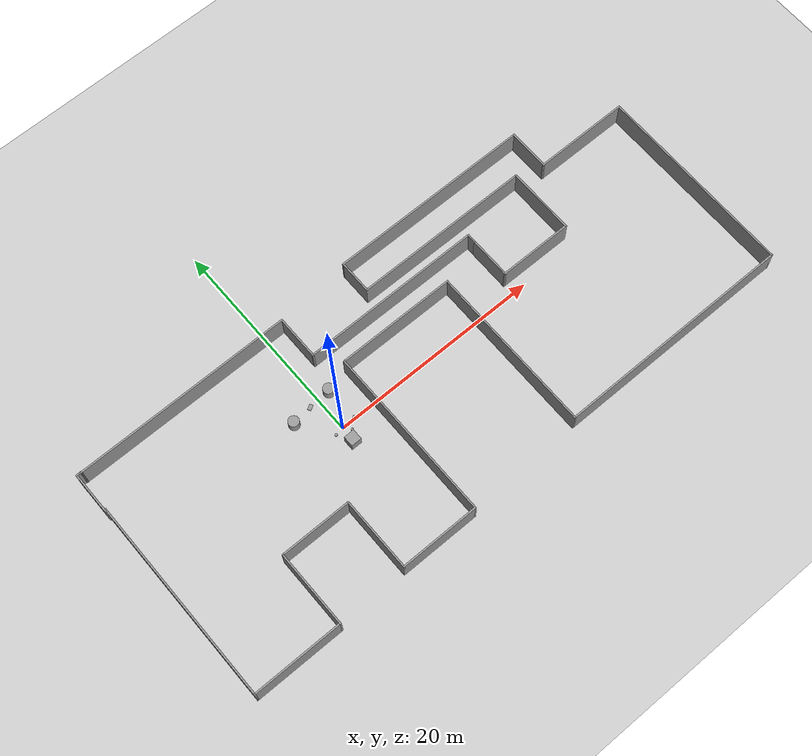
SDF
<sdf version="1.7">
 <world name="default">
  <light name="sun" type="directional">
   <pose>0 0 10 0 -0 0</pose>
   <diffuse>0.8 0.8 0.8 1</diffuse>
   <specular>0.2 0.2 0.2 1</specular>
   <attenuation>
    <range>1000</range>
    <constant>0.9</constant>
    <linear>0.01</linear>
    <quadratic>0.001</quadratic>
   </attenuation>
   <direction>-0.5 0.1 -0.9</direction>
   <spot><inner_angle>0</inner_angle><outer_angle>0</outer_angle><falloff>0</falloff></spot>
  </light>
  <model name="ground_plane">
   <static>1</static>
   <link name="link">
    <collision name="collision">
     <geometry><plane><normal>0 0 1</normal><size>100 100</size></plane></geometry>
     <surface>
      <contact><collide_bitmask>65535</collide_bitmask></contact>
      <friction><ode><mu>100</mu><mu2>50</mu2></ode></friction>
     </surface>
    </collision>
    <visual name="visual">
     <cast_shadows>0</cast_shadows>
     <geometry><plane><normal>0 0 1</normal><size>100 100</size></plane></geometry>
     <material>
      <script><uri>file://media/materials/scripts/gazebo.material</uri><name>Gazebo/Grey</name></script>
     </material>
    </visual>
   </link>
  </model>
  <gravity>0 0 -9.8</gravity>
  <magnetic_field>6e-06 2.3e-05 -4.2e-05</magnetic_field>
  <atmosphere type="adiabatic"/>
  <physics type="ode">
   <max_step_size>0.001</max_step_size>
   <real_time_factor>1</real_time_factor>
   <real_time_update_rate>1000</real_time_update_rate>
  </physics>
  <scene><ambient>0.4 0.4 0.4 1</ambient><background>0.7 0.7 0.7 1</background><shadows>1</shadows></scene>
  <spherical_coordinates>
   <surface_model>EARTH_WGS84</surface_model>
   <latitude_deg>0</latitude_deg>
   <longitude_deg>0</longitude_deg>
   <elevation>0</elevation>
   <heading_deg>0</heading_deg>
  </spherical_coordinates>
  <model name="world1">
   <pose>8.8688 -1.19416 0 0 -0 0</pose>
   <link name="Wall_0">
    <collision name="Wall_0_Collision">
     <geometry><box><size>19.25 0.15 2.5</size></box></geometry>
     <pose>0 0 1.25 0 -0 0</pose>
    </collision>
    <visual name="Wall_0_Visual">
     <pose>0 0 1.25 0 -0 0</pose>
     <geometry><box><size>19.25 0.15 2.5</size></box></geometry>
     <material>
      <script><uri>file://media/materials/scripts/gazebo.material</uri><name>Gazebo/Grey</name></script>
      <ambient>1 1 1 1</ambient>
     </material>
     <meta><layer>0</layer></meta>
    </visual>
    <pose>-27.8267 -2.175 0 0 -0 -1.5708</pose>
   </link>
   <link name="Wall_1">
    <collision name="Wall_1_Collision">
     <geometry><box><size>8.5 0.15 2.5</size></box></geometry>
     <pose>0 0 1.25 0 -0 0</pose>
    </collision>
    <visual name="Wall_1_Visual">
     <pose>0 0 1.25 0 -0 0</pose>
     <geometry><box><size>8.5 0.15 2.5</size></box></geometry>
     <material>
      <script><uri>file://media/materials/scripts/gazebo.material</uri><name>Gazebo/Grey</name></script>
      <ambient>1 1 1 1</ambient>
     </material>
     <meta><layer>0</layer></meta>
    </visual>
    <pose>-23.6517 -11.725 0 0 -0 0</pose>
   </link>
   <link name="Wall_10">
    <collision name="Wall_10_Collision">
     <geometry><box><size>19 0.15 2.5</size></box></geometry>
     <pose>0 0 1.25 0 -0 0</pose>
    </collision>
    <visual name="Wall_10_Visual">
     <pose>0 0 1.25 0 -0 0</pose>
     <geometry><box><size>19 0.15 2.5</size></box></geometry>
     <material>
      <script><uri>file://media/materials/scripts/gazebo.material</uri><name>Gazebo/Grey</name></script>
      <ambient>1 1 1 1</ambient>
     </material>
     <meta><layer>0</layer></meta>
    </visual>
    <pose>27.9233 -1.55 0 0 -0 1.5708</pose>
   </link>
   <link name="Wall_11">
    <collision name="Wall_11_Collision">
     <geometry><box><size>9 0.15 2.5</size></box></geometry>
     <pose>0 0 1.25 0 -0 0</pose>
    </collision>
    <visual name="Wall_11_Visual">
     <pose>0 0 1.25 0 -0 0</pose>
     <geometry><box><size>9 0.15 2.5</size></box></geometry>
     <material>
      <script><uri>file://media/materials/scripts/gazebo.material</uri><name>Gazebo/Grey</name></script>
      <ambient>1 1 1 1</ambient>
     </material>
     <meta><layer>0</layer></meta>
    </visual>
    <pose>23.4983 7.875 0 0 -0 3.14159</pose>
   </link>
   <link name="Wall_12">
    <collision name="Wall_12_Collision">
     <geometry><box><size>4 0.15 2.5</size></box></geometry>
     <pose>0 0 1.25 0 -0 0</pose>
    </collision>
    <visual name="Wall_12_Visual">
     <pose>0 0 1.25 0 -0 0</pose>
     <geometry><box><size>4 0.15 2.5</size></box></geometry>
     <material>
      <script><uri>file://media/materials/scripts/gazebo.material</uri><name>Gazebo/Grey</name></script>
      <ambient>1 1 1 1</ambient>
     </material>
     <meta><layer>0</layer></meta>
    </visual>
    <pose>19.0733 9.8 0 0 -0 1.5708</pose>
   </link>
   <link name="Wall_13">
    <collision name="Wall_13_Collision">
     <geometry><box><size>19.25 0.15 2.5</size></box></geometry>
     <pose>0 0 1.25 0 -0 0</pose>
    </collision>
    <visual name="Wall_13_Visual">
     <pose>0 0 1.25 0 -0 0</pose>
     <geometry><box><size>19.25 0.15 2.5</size></box></geometry>
     <material>
      <script><uri>file://media/materials/scripts/gazebo.material</uri><name>Gazebo/Grey</name></script>
      <ambient>1 1 1 1</ambient>
     </material>
     <meta><layer>0</layer></meta>
    </visual>
    <pose>9.5233 11.725 0 0 -0 3.14159</pose>
   </link>
   <link name="Wall_14">
    <collision name="Wall_14_Collision">
     <geometry><box><size>3.25 0.15 2.5</size></box></geometry>
     <pose>0 0 1.25 0 -0 0</pose>
    </collision>
    <visual name="Wall_14_Visual">
     <pose>0 0 1.25 0 -0 0</pose>
     <geometry><box><size>3.25 0.15 2.5</size></box></geometry>
     <material>
      <script><uri>file://media/materials/scripts/gazebo.material</uri><name>Gazebo/Grey</name></script>
      <ambient>1 1 1 1</ambient>
     </material>
     <meta><layer>0</layer></meta>
    </visual>
    <pose>-0.026704 10.175 0 0 -0 -1.5708</pose>
   </link>
   <link name="Wall_15">
    <collision name="Wall_15_Collision">
     <geometry><box><size>16.75 0.15 2.5</size></box></geometry>
     <pose>0 0 1.25 0 -0 0</pose>
    </collision>
    <visual name="Wall_15_Visual">
     <pose>0 0 1.25 0 -0 0</pose>
     <geometry><box><size>16.75 0.15 2.5</size></box></geometry>
     <material>
      <script><uri>file://media/materials/scripts/gazebo.material</uri><name>Gazebo/Grey</name></script>
      <ambient>1 1 1 1</ambient>
     </material>
     <meta><layer>0</layer></meta>
    </visual>
    <pose>8.2733 8.625 0 0 -0 0</pose>
   </link>
   <link name="Wall_16">
    <collision name="Wall_16_Collision">
     <geometry><box><size>6.5 0.15 2.5</size></box></geometry>
     <pose>0 0 1.25 0 -0 0</pose>
    </collision>
    <visual name="Wall_16_Visual">
     <pose>0 0 1.25 0 -0 0</pose>
     <geometry><box><size>6.5 0.15 2.5</size></box></geometry>
     <material>
      <script><uri>file://media/materials/scripts/gazebo.material</uri><name>Gazebo/Grey</name></script>
      <ambient>1 1 1 1</ambient>
     </material>
     <meta><layer>0</layer></meta>
    </visual>
    <pose>16.5733 5.45 0 0 -0 -1.5708</pose>
   </link>
   <link name="Wall_17">
    <collision name="Wall_17_Collision">
     <geometry><box><size>7 0.15 2.5</size></box></geometry>
     <pose>0 0 1.25 0 -0 0</pose>
    </collision>
    <visual name="Wall_17_Visual">
     <pose>0 0 1.25 0 -0 0</pose>
     <geometry><box><size>7 0.15 2.5</size></box></geometry>
     <material>
      <script><uri>file://media/materials/scripts/gazebo.material</uri><name>Gazebo/Grey</name></script>
      <ambient>1 1 1 1</ambient>
     </material>
     <meta><layer>0</layer></meta>
    </visual>
    <pose>13.1483 2.275 0 0 -0 3.14159</pose>
   </link>
   <link name="Wall_18">
    <collision name="Wall_18_Collision">
     <geometry><box><size>4 0.15 2.5</size></box></geometry>
     <pose>0 0 1.25 0 -0 0</pose>
    </collision>
    <visual name="Wall_18_Visual">
     <pose>0 0 1.25 0 -0 0</pose>
     <geometry><box><size>4 0.15 2.5</size></box></geometry>
     <material>
      <script><uri>file://media/materials/scripts/gazebo.material</uri><name>Gazebo/Grey</name></script>
      <ambient>1 1 1 1</ambient>
     </material>
     <meta><layer>0</layer></meta>
    </visual>
    <pose>9.7233 4.2 0 0 -0 1.5708</pose>
   </link>
   <link name="Wall_19">
    <collision name="Wall_19_Collision">
     <geometry><box><size>1 0.15 2.5</size></box></geometry>
     <pose>0 0 1.25 0 -0 0</pose>
    </collision>
    <visual name="Wall_19_Visual">
     <pose>0 0 1.25 0 -0 0</pose>
     <geometry><box><size>1 0.15 2.5</size></box></geometry>
     <material>
      <script><uri>file://media/materials/scripts/gazebo.material</uri><name>Gazebo/Grey</name></script>
      <ambient>1 1 1 1</ambient>
     </material>
     <meta><layer>0</layer></meta>
    </visual>
    <pose>9.7233 6.55 0 0 -0 1.5708</pose>
   </link>
   <link name="Wall_2">
    <collision name="Wall_2_Collision">
     <geometry><box><size>7.25 0.15 2.5</size></box></geometry>
     <pose>0 0 1.25 0 -0 0</pose>
    </collision>
    <visual name="Wall_2_Visual">
     <pose>0 0 1.25 0 -0 0</pose>
     <geometry><box><size>7.25 0.15 2.5</size></box></geometry>
     <material>
      <script><uri>file://media/materials/scripts/gazebo.material</uri><name>Gazebo/Grey</name></script>
      <ambient>1 1 1 1</ambient>
     </material>
     <meta><layer>0</layer></meta>
    </visual>
    <pose>-19.4767 -8.175 0 0 -0 1.5708</pose>
   </link>
   <link name="Wall_20">
    <collision name="Wall_20_Collision">
     <geometry><box><size>17 0.15 2.5</size></box></geometry>
     <pose>0 0 1.25 0 -0 0</pose>
    </collision>
    <visual name="Wall_20_Visual">
     <pose>0 0 1.25 0 -0 0</pose>
     <geometry><box><size>17 0.15 2.5</size></box></geometry>
     <material>
      <script><uri>file://media/materials/scripts/gazebo.material</uri><name>Gazebo/Grey</name></script>
      <ambient>1 1 1 1</ambient>
     </material>
     <meta><layer>0</layer></meta>
    </visual>
    <pose>1.2983 6.975 0 0 -0 3.14159</pose>
   </link>
   <link name="Wall_21">
    <collision name="Wall_21_Collision">
     <geometry><box><size>4.25 0.15 2.5</size></box></geometry>
     <pose>0 0 1.25 0 -0 0</pose>
    </collision>
    <visual name="Wall_21_Visual">
     <pose>0 0 1.25 0 -0 0</pose>
     <geometry><box><size>4.25 0.15 2.5</size></box></geometry>
     <material>
      <script><uri>file://media/materials/scripts/gazebo.material</uri><name>Gazebo/Grey</name></script>
      <ambient>1 1 1 1</ambient>
     </material>
     <meta><layer>0</layer></meta>
    </visual>
    <pose>-7.1267 9.025 0 0 -0 1.5708</pose>
   </link>
   <link name="Wall_22">
    <collision name="Wall_22_Collision">
     <geometry><box><size>20.5 0.15 2.5</size></box></geometry>
     <pose>0 0 1.25 0 -0 0</pose>
    </collision>
    <visual name="Wall_22_Visual">
     <pose>0 0 1.25 0 -0 0</pose>
     <geometry><box><size>20.5 0.15 2.5</size></box></geometry>
     <material>
      <script><uri>file://media/materials/scripts/gazebo.material</uri><name>Gazebo/Grey</name></script>
      <ambient>1 1 1 1</ambient>
     </material>
     <meta><layer>0</layer></meta>
    </visual>
    <pose>-17.3017 11.075 0 0 -0 3.14159</pose>
   </link>
   <link name="Wall_23">
    <collision name="Wall_23_Collision">
     <geometry><box><size>0.25 0.15 2.5</size></box></geometry>
     <pose>0 0 1.25 0 -0 0</pose>
    </collision>
    <visual name="Wall_23_Visual">
     <pose>0 0 1.25 0 -0 0</pose>
     <geometry><box><size>0.25 0.15 2.5</size></box></geometry>
     <material>
      <script><uri>file://media/materials/scripts/gazebo.material</uri><name>Gazebo/Grey</name></script>
      <ambient>1 1 1 1</ambient>
     </material>
     <meta><layer>0</layer></meta>
    </visual>
    <pose>-27.525 11.0879 0 0 -0 2.87979</pose>
   </link>
   <link name="Wall_24">
    <collision name="Wall_24_Collision">
     <geometry><box><size>0.5 0.15 2.5</size></box></geometry>
     <pose>0 0 1.25 0 -0 0</pose>
    </collision>
    <visual name="Wall_24_Visual">
     <pose>0 0 1.25 0 -0 0</pose>
     <geometry><box><size>0.5 0.15 2.5</size></box></geometry>
     <material>
      <script><uri>file://media/materials/scripts/gazebo.material</uri><name>Gazebo/Grey</name></script>
      <ambient>1 1 1 1</ambient>
     </material>
     <meta><layer>0</layer></meta>
    </visual>
    <pose>-27.7483 11.1009 0 0 -0 3.14159</pose>
   </link>
   <link name="Wall_25">
    <collision name="Wall_25_Collision">
     <geometry><box><size>4 0.15 2.5</size></box></geometry>
     <pose>0 0 1.25 0 -0 0</pose>
    </collision>
    <visual name="Wall_25_Visual">
     <pose>0 0 1.25 0 -0 0</pose>
     <geometry><box><size>4 0.15 2.5</size></box></geometry>
     <material>
      <script><uri>file://media/materials/scripts/gazebo.material</uri><name>Gazebo/Grey</name></script>
      <ambient>1 1 1 1</ambient>
     </material>
     <meta><layer>0</layer></meta>
    </visual>
    <pose>-27.9233 9.17588 0 0 -0 -1.5708</pose>
   </link>
   <link name="Wall_3">
    <collision name="Wall_3_Collision">
     <geometry><box><size>6.75 0.15 2.5</size></box></geometry>
     <pose>0 0 1.25 0 -0 0</pose>
    </collision>
    <visual name="Wall_3_Visual">
     <pose>0 0 1.25 0 -0 0</pose>
     <geometry><box><size>6.75 0.15 2.5</size></box></geometry>
     <material>
      <script><uri>file://media/materials/scripts/gazebo.material</uri><name>Gazebo/Grey</name></script>
      <ambient>1 1 1 1</ambient>
     </material>
     <meta><layer>0</layer></meta>
    </visual>
    <pose>-16.1767 -4.625 0 0 -0 0</pose>
   </link>
   <link name="Wall_4">
    <collision name="Wall_4_Collision">
     <geometry><box><size>7 0.15 2.5</size></box></geometry>
     <pose>0 0 1.25 0 -0 0</pose>
    </collision>
    <visual name="Wall_4_Visual">
     <pose>0 0 1.25 0 -0 0</pose>
     <geometry><box><size>7 0.15 2.5</size></box></geometry>
     <material>
      <script><uri>file://media/materials/scripts/gazebo.material</uri><name>Gazebo/Grey</name></script>
      <ambient>1 1 1 1</ambient>
     </material>
     <meta><layer>0</layer></meta>
    </visual>
    <pose>-12.8767 -8.05 0 0 -0 -1.5708</pose>
   </link>
   <link name="Wall_5">
    <collision name="Wall_5_Collision">
     <geometry><box><size>7.5 0.15 2.5</size></box></geometry>
     <pose>0 0 1.25 0 -0 0</pose>
    </collision>
    <visual name="Wall_5_Visual">
     <pose>0 0 1.25 0 -0 0</pose>
     <geometry><box><size>7.5 0.15 2.5</size></box></geometry>
     <material>
      <script><uri>file://media/materials/scripts/gazebo.material</uri><name>Gazebo/Grey</name></script>
      <ambient>1 1 1 1</ambient>
     </material>
     <meta><layer>0</layer></meta>
    </visual>
    <pose>-9.2017 -11.475 0 0 -0 0</pose>
   </link>
   <link name="Wall_6">
    <collision name="Wall_6_Collision">
     <geometry><box><size>16.5 0.15 2.5</size></box></geometry>
     <pose>0 0 1.25 0 -0 0</pose>
    </collision>
    <visual name="Wall_6_Visual">
     <pose>0 0 1.25 0 -0 0</pose>
     <geometry><box><size>16.5 0.15 2.5</size></box></geometry>
     <material>
      <script><uri>file://media/materials/scripts/gazebo.material</uri><name>Gazebo/Grey</name></script>
      <ambient>1 1 1 1</ambient>
     </material>
     <meta><layer>0</layer></meta>
    </visual>
    <pose>-5.5267 -3.3 0 0 -0 1.5708</pose>
   </link>
   <link name="Wall_7">
    <collision name="Wall_7_Collision">
     <geometry><box><size>11.25 0.15 2.5</size></box></geometry>
     <pose>0 0 1.25 0 -0 0</pose>
    </collision>
    <visual name="Wall_7_Visual">
     <pose>0 0 1.25 0 -0 0</pose>
     <geometry><box><size>11.25 0.15 2.5</size></box></geometry>
     <material>
      <script><uri>file://media/materials/scripts/gazebo.material</uri><name>Gazebo/Grey</name></script>
      <ambient>1 1 1 1</ambient>
     </material>
     <meta><layer>0</layer></meta>
    </visual>
    <pose>0.023296 4.875 0 0 -0 0</pose>
   </link>
   <link name="Wall_8">
    <collision name="Wall_8_Collision">
     <geometry><box><size>16 0.15 2.5</size></box></geometry>
     <pose>0 0 1.25 0 -0 0</pose>
    </collision>
    <visual name="Wall_8_Visual">
     <pose>0 0 1.25 0 -0 0</pose>
     <geometry><box><size>16 0.15 2.5</size></box></geometry>
     <material>
      <script><uri>file://media/materials/scripts/gazebo.material</uri><name>Gazebo/Grey</name></script>
      <ambient>1 1 1 1</ambient>
     </material>
     <meta><layer>0</layer></meta>
    </visual>
    <pose>5.5733 -3.05 0 0 -0 -1.5708</pose>
   </link>
   <link name="Wall_9">
    <collision name="Wall_9_Collision">
     <geometry><box><size>22.5 0.15 2.5</size></box></geometry>
     <pose>0 0 1.25 0 -0 0</pose>
    </collision>
    <visual name="Wall_9_Visual">
     <pose>0 0 1.25 0 -0 0</pose>
     <geometry><box><size>22.5 0.15 2.5</size></box></geometry>
     <material>
      <script><uri>file://media/materials/scripts/gazebo.material</uri><name>Gazebo/Grey</name></script>
      <ambient>1 1 1 1</ambient>
     </material>
     <meta><layer>0</layer></meta>
    </visual>
    <pose>16.7483 -10.975 0 0 -0 0</pose>
   </link>
   <static>1</static>
  </model>
  <model name="unit_cylinder">
   <pose>-2.8273 2.80257 0.499996 2e-06 -0 0</pose>
   <link name="link">
    <inertial>
     <mass>1</mass>
     <inertia><ixx>0.145833</ixx><ixy>0</ixy><ixz>0</ixz><iyy>0.145833</iyy><iyz>0</iyz><izz>0.125</izz></inertia>
    </inertial>
    <collision name="collision">
     <geometry><cylinder><radius>0.5</radius><length>1</length></cylinder></geometry>
    </collision>
    <visual name="visual">
     <geometry><cylinder><radius>0.5</radius><length>1</length></cylinder></geometry>
     <material>
      <script><name>Gazebo/Grey</name><uri>file://media/materials/scripts/gazebo.material</uri></script>
     </material>
    </visual>
   </link>
  </model>
  <model name="unit_cylinder_0">
   <pose>1.14305 3.183 0.499996 -1e-06 -0 -0</pose>
   <link name="link">
    <inertial>
     <mass>1</mass>
     <inertia><ixx>0.145833</ixx><ixy>0</ixy><ixz>0</ixz><iyy>0.145833</iyy><iyz>0</iyz><izz>0.125</izz></inertia>
    </inertial>
    <collision name="collision">
     <geometry><cylinder><radius>0.5</radius><length>1</length></cylinder></geometry>
    </collision>
    <visual name="visual">
     <geometry><cylinder><radius>0.5</radius><length>1</length></cylinder></geometry>
     <material>
      <script><name>Gazebo/Grey</name><uri>file://media/materials/scripts/gazebo.material</uri></script>
     </material>
    </visual>
   </link>
  </model>
  <model name="unit_box">
   <pose>-0.061448 -1.44511 0.499995 -1e-05 0 0.004294</pose>
   <link name="link">
    <inertial>
     <mass>1</mass>
     <inertia>
      <ixx>0.166667</ixx>
      <ixy>0</ixy>
      <ixz>0</ixz>
      <iyy>0.166667</iyy>
      <iyz>0</iyz>
      <izz>0.166667</izz>
     </inertia>
    </inertial>
    <collision name="collision"><geometry><box><size>1 1 1</size></box></geometry></collision>
    <visual name="visual">
     <geometry><box><size>1 1 1</size></box></geometry>
     <material>
      <script><name>Gazebo/Grey</name><uri>file://media/materials/scripts/gazebo.material</uri></script>
     </material>
    </visual>
   </link>
  </model>
  <audio><device>default</device></audio>
  <model name="unit_cylinder_1_clone">
   <pose>0.254942 0.878195 0.087806 0 0 -2e-06</pose>
   <link name="link">
    <inertial>
     <mass>1</mass>
     <inertia><ixx>0.145833</ixx><ixy>0</ixy><ixz>0</ixz><iyy>0.145833</iyy><iyz>0</iyz><izz>0.125</izz></inertia>
    </inertial>
    <collision name="collision">
     <geometry><cylinder><radius>0.121973</radius><length>0.175631</length></cylinder></geometry>
    </collision>
    <visual name="visual">
     <geometry><cylinder><radius>0.121973</radius><length>0.175631</length></cylinder></geometry>
     <material>
      <script><name>Gazebo/Grey</name><uri>file://media/materials/scripts/gazebo.material</uri></script>
     </material>
    </visual>
   </link>
  </model>
  <model name="unit_box_0_clone">
   <pose>1.34272 0.183857 0.087669 3e-06 1e-06 -1.0365</pose>
   <link name="link">
    <inertial>
     <mass>1</mass>
     <inertia>
      <ixx>0.166667</ixx>
      <ixy>0</ixy>
      <ixz>0</ixz>
      <iyy>0.166667</iyy>
      <iyz>0</iyz>
      <izz>0.166667</izz>
     </inertia>
    </inertial>
    <collision name="collision">
     <geometry><box><size>0.143744 0.217647 0.175337</size></box></geometry>
    </collision>
    <visual name="visual">
     <geometry><box><size>0.143744 0.217647 0.175337</size></box></geometry>
     <material>
      <script><name>Gazebo/Grey</name><uri>file://media/materials/scripts/gazebo.material</uri></script>
     </material>
    </visual>
   </link>
  </model>
  <model name="unit_box_0_clone_clone">
   <pose>0.545656 -0.585602 0.087667 -4e-06 -2e-06 -1.07027</pose>
   <link name="link">
    <inertial>
     <mass>1</mass>
     <inertia>
      <ixx>0.166667</ixx>
      <ixy>0</ixy>
      <ixz>0</ixz>
      <iyy>0.166667</iyy>
      <iyz>0</iyz>
      <izz>0.166667</izz>
     </inertia>
    </inertial>
    <collision name="collision">
     <geometry><box><size>0.143744 0.217647 0.175336</size></box></geometry>
    </collision>
    <visual name="visual">
     <geometry><box><size>0.143744 0.217647 0.175336</size></box></geometry>
     <material>
      <script><name>Gazebo/Grey</name><uri>file://media/materials/scripts/gazebo.material</uri></script>
     </material>
    </visual>
   </link>
  </model>
  <model name="unit_cylinder_1_clone_clone">
   <pose>-0.783106 -0.124056 0.087815 0 -0 -1e-06</pose>
   <link name="link">
    <inertial>
     <mass>1</mass>
     <inertia><ixx>0.145833</ixx><ixy>0</ixy><ixz>0</ixz><iyy>0.145833</iyy><iyz>0</iyz><izz>0.125</izz></inertia>
    </inertial>
    <collision name="collision">
     <geometry><cylinder><radius>0.121973</radius><length>0.175632</length></cylinder></geometry>
    </collision>
    <visual name="visual">
     <geometry><cylinder><radius>0.121973</radius><length>0.175632</length></cylinder></geometry>
     <material>
      <script><name>Gazebo/Grey</name><uri>file://media/materials/scripts/gazebo.material</uri></script>
     </material>
    </visual>
   </link>
  </model>
  <model name="unit_box_0_clone_clone_0">
   <pose>-0.876749 3.1529 0.064135 -0 -0 -1.03649</pose>
   <link name="link">
    <inertial>
     <mass>1</mass>
     <inertia>
      <ixx>0.166667</ixx>
      <ixy>0</ixy>
      <ixz>0</ixz>
      <iyy>0.166667</iyy>
      <iyz>0</iyz>
      <izz>0.166667</izz>
     </inertia>
    </inertial>
    <collision name="collision">
     <geometry><box><size>0.328579 0.512395 0.128271</size></box></geometry>
    </collision>
    <visual name="visual">
     <geometry><box><size>0.328579 0.512395 0.128271</size></box></geometry>
     <material>
      <script><name>Gazebo/Grey</name><uri>file://media/materials/scripts/gazebo.material</uri></script>
     </material>
    </visual>
   </link>
  </model>
 </world>
</sdf>
